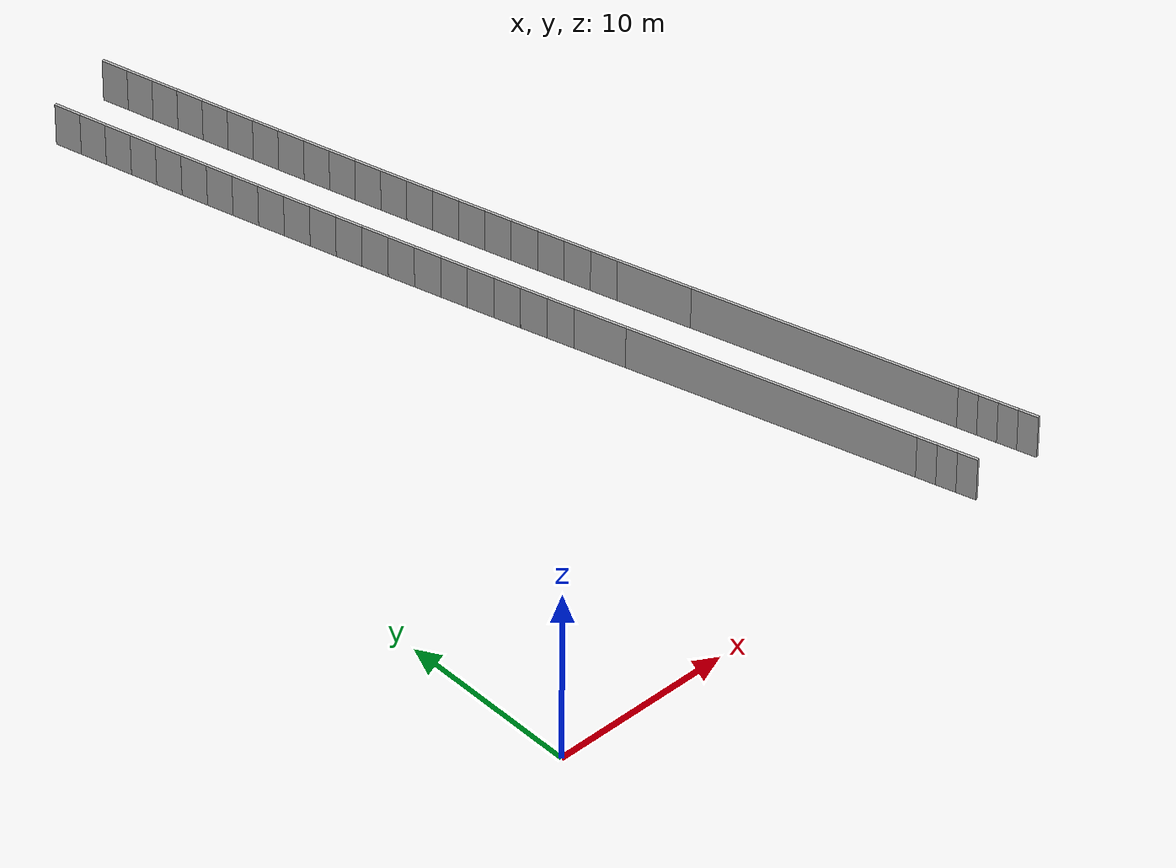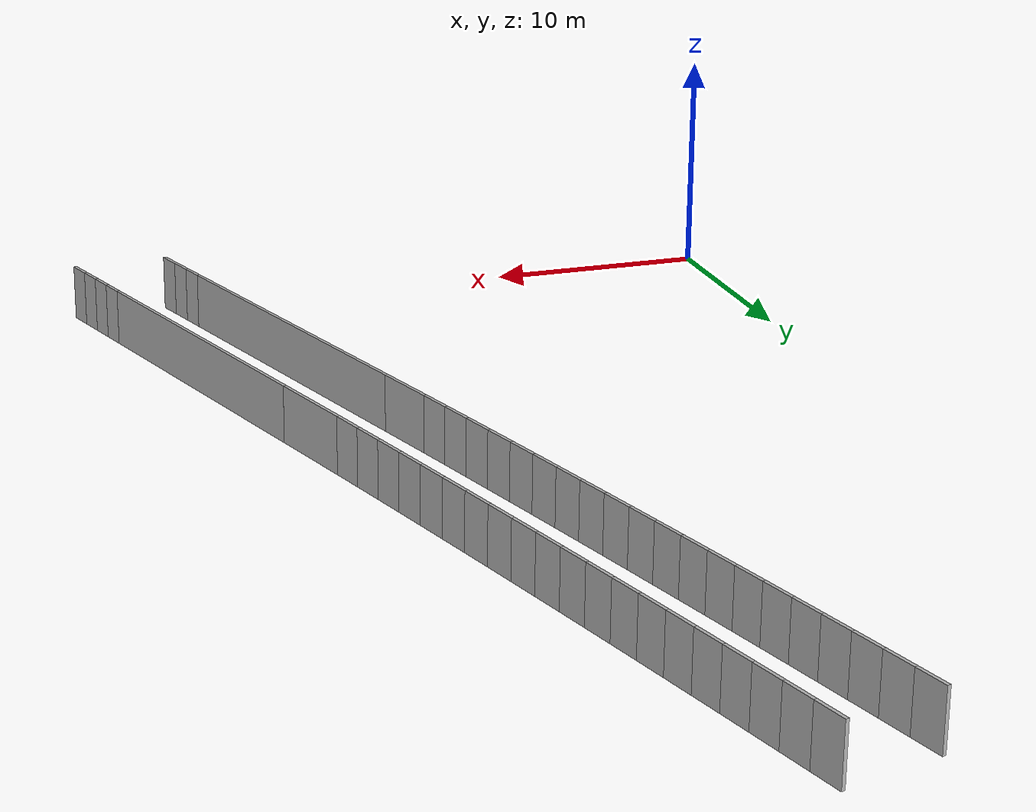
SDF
<?xml version="1.0" ?>
<sdf version="1.6">
  <model name="sps_0320">
    <pose frame="">0 0 0 0 -0 0</pose>
    <static>1</static>
    <self_collide>0</self_collide>
    <allow_auto_disable>0</allow_auto_disable>
    <link name="Wall296">
      <kinematic>0</kinematic>
      <gravity>1</gravity>
      <self_collide>0</self_collide>
      <collision name="collision">
        <geometry>
          <box>
            <size>2.85806 0.15 2.5</size>
          </box>
        </geometry>
        <pose frame="">0 0 0 0 -0 0</pose>
      </collision>
      <visual name="visual">
        <geometry>
          <box>
            <size>2.85806 0.15 2.5</size>
          </box>
        </geometry>
        <pose frame="">0 0 0 0 -0 0</pose>
        <cast_shadows>1</cast_shadows>
        <transparency>0.0</transparency>
      </visual>
      <pose frame="">20.5429 19.2606 1.25 0 0 -1.27627</pose>
    </link>
    <link name="Wall297">
      <kinematic>0</kinematic>
      <gravity>1</gravity>
      <self_collide>0</self_collide>
      <collision name="collision">
        <geometry>
          <box>
            <size>15.8238 0.15 2.5</size>
          </box>
        </geometry>
        <pose frame="">0 0 0 0 -0 0</pose>
      </collision>
      <visual name="visual">
        <geometry>
          <box>
            <size>15.8238 0.15 2.5</size>
          </box>
        </geometry>
        <pose frame="">0 0 0 0 -0 0</pose>
        <cast_shadows>1</cast_shadows>
        <transparency>0.0</transparency>
      </visual>
      <pose frame="">23.2545 10.3219 1.25 0 0 -1.27627</pose>
    </link>
    <link name="Wall366">
      <kinematic>0</kinematic>
      <gravity>1</gravity>
      <self_collide>0</self_collide>
      <collision name="collision">
        <geometry>
          <box>
            <size>14.5713 0.15 2.5</size>
          </box>
        </geometry>
        <pose frame="">0 0 0 0 -0 0</pose>
      </collision>
      <visual name="visual">
        <geometry>
          <box>
            <size>14.5713 0.15 2.5</size>
          </box>
        </geometry>
        <pose frame="">0 0 0 0 -0 0</pose>
        <cast_shadows>1</cast_shadows>
        <transparency>0.0</transparency>
      </visual>
      <pose frame="">27.3989 10.9213 1.25 0 -0 1.86538</pose>
    </link>
    <link name="Wall367">
      <kinematic>0</kinematic>
      <gravity>1</gravity>
      <self_collide>0</self_collide>
      <collision name="collision">
        <geometry>
          <box>
            <size>4.09938 0.15 2.5</size>
          </box>
        </geometry>
        <pose frame="">0 0 0 0 -0 0</pose>
      </collision>
      <visual name="visual">
        <geometry>
          <box>
            <size>4.09938 0.15 2.5</size>
          </box>
        </geometry>
        <pose frame="">0 0 0 0 -0 0</pose>
        <cast_shadows>1</cast_shadows>
        <transparency>0.0</transparency>
      </visual>
      <pose frame="">24.6884 19.8545 1.25 0 -0 1.86538</pose>
    </link>
    <link name="Wall2739">
      <kinematic>0</kinematic>
      <gravity>1</gravity>
      <self_collide>0</self_collide>
      <collision name="collision">
        <geometry>
          <box>
            <size>1.07596 0.15 2.5</size>
          </box>
        </geometry>
        <pose frame="">0 0 0 0 -0 0</pose>
      </collision>
      <visual name="visual">
        <geometry>
          <box>
            <size>1.07596 0.15 2.5</size>
          </box>
        </geometry>
        <pose frame="">0 0 0 0 -0 0</pose>
        <cast_shadows>1</cast_shadows>
        <transparency>0.0</transparency>
      </visual>
      <pose frame="">29.6702 3.43458 1.25 0 0 -1.27676</pose>
    </link>
    <link name="Wall2740">
      <kinematic>0</kinematic>
      <gravity>1</gravity>
      <self_collide>0</self_collide>
      <collision name="collision">
        <geometry>
          <box>
            <size>1.07595 0.15 2.5</size>
          </box>
        </geometry>
        <pose frame="">0 0 0 0 -0 0</pose>
      </collision>
      <visual name="visual">
        <geometry>
          <box>
            <size>1.07595 0.15 2.5</size>
          </box>
        </geometry>
        <pose frame="">0 0 0 0 -0 0</pose>
        <cast_shadows>1</cast_shadows>
        <transparency>0.0</transparency>
      </visual>
      <pose frame="">29.9826 2.40498 1.25 0 0 -1.27563</pose>
    </link>
    <link name="Wall2741">
      <kinematic>0</kinematic>
      <gravity>1</gravity>
      <self_collide>0</self_collide>
      <collision name="collision">
        <geometry>
          <box>
            <size>1.0759 0.15 2.5</size>
          </box>
        </geometry>
        <pose frame="">0 0 0 0 -0 0</pose>
      </collision>
      <visual name="visual">
        <geometry>
          <box>
            <size>1.0759 0.15 2.5</size>
          </box>
        </geometry>
        <pose frame="">0 0 0 0 -0 0</pose>
        <cast_shadows>1</cast_shadows>
        <transparency>0.0</transparency>
      </visual>
      <pose frame="">30.2962 1.37578 1.25 0 0 -1.27443</pose>
    </link>
    <link name="Wall2742">
      <kinematic>0</kinematic>
      <gravity>1</gravity>
      <self_collide>0</self_collide>
      <collision name="collision">
        <geometry>
          <box>
            <size>1.0759 0.15 2.5</size>
          </box>
        </geometry>
        <pose frame="">0 0 0 0 -0 0</pose>
      </collision>
      <visual name="visual">
        <geometry>
          <box>
            <size>1.0759 0.15 2.5</size>
          </box>
        </geometry>
        <pose frame="">0 0 0 0 -0 0</pose>
        <cast_shadows>1</cast_shadows>
        <transparency>0.0</transparency>
      </visual>
      <pose frame="">30.6111 0.346999 1.25 0 0 -1.27307</pose>
    </link>
    <link name="Wall5372">
      <kinematic>0</kinematic>
      <gravity>1</gravity>
      <self_collide>0</self_collide>
      <collision name="collision">
        <geometry>
          <box>
            <size>1.49649 0.15 2.5</size>
          </box>
        </geometry>
        <pose frame="">0 0 0 0 -0 0</pose>
      </collision>
      <visual name="visual">
        <geometry>
          <box>
            <size>1.49649 0.15 2.5</size>
          </box>
        </geometry>
        <pose frame="">0 0 0 0 -0 0</pose>
        <cast_shadows>1</cast_shadows>
        <transparency>0.0</transparency>
      </visual>
      <pose frame="">16.157 49.8972 1.25 0 0 -1.31089</pose>
    </link>
    <link name="Wall5373">
      <kinematic>0</kinematic>
      <gravity>1</gravity>
      <self_collide>0</self_collide>
      <collision name="collision">
        <geometry>
          <box>
            <size>1.49651 0.15 2.5</size>
          </box>
        </geometry>
        <pose frame="">0 0 0 0 -0 0</pose>
      </collision>
      <visual name="visual">
        <geometry>
          <box>
            <size>1.49651 0.15 2.5</size>
          </box>
        </geometry>
        <pose frame="">0 0 0 0 -0 0</pose>
        <cast_shadows>1</cast_shadows>
        <transparency>0.0</transparency>
      </visual>
      <pose frame="">16.5427 48.4513 1.25 0 0 -1.30925</pose>
    </link>
    <link name="Wall5374">
      <kinematic>0</kinematic>
      <gravity>1</gravity>
      <self_collide>0</self_collide>
      <collision name="collision">
        <geometry>
          <box>
            <size>1.4965 0.15 2.5</size>
          </box>
        </geometry>
        <pose frame="">0 0 0 0 -0 0</pose>
      </collision>
      <visual name="visual">
        <geometry>
          <box>
            <size>1.4965 0.15 2.5</size>
          </box>
        </geometry>
        <pose frame="">0 0 0 0 -0 0</pose>
        <cast_shadows>1</cast_shadows>
        <transparency>0.0</transparency>
      </visual>
      <pose frame="">16.9309 47.006 1.25 0 0 -1.30756</pose>
    </link>
    <link name="Wall5375">
      <kinematic>0</kinematic>
      <gravity>1</gravity>
      <self_collide>0</self_collide>
      <collision name="collision">
        <geometry>
          <box>
            <size>1.49678 0.15 2.5</size>
          </box>
        </geometry>
        <pose frame="">0 0 0 0 -0 0</pose>
      </collision>
      <visual name="visual">
        <geometry>
          <box>
            <size>1.49678 0.15 2.5</size>
          </box>
        </geometry>
        <pose frame="">0 0 0 0 -0 0</pose>
        <cast_shadows>1</cast_shadows>
        <transparency>0.0</transparency>
      </visual>
      <pose frame="">17.3214 45.5612 1.25 0 0 -1.30609</pose>
    </link>
    <link name="Wall5376">
      <kinematic>0</kinematic>
      <gravity>1</gravity>
      <self_collide>0</self_collide>
      <collision name="collision">
        <geometry>
          <box>
            <size>1.49635 0.15 2.5</size>
          </box>
        </geometry>
        <pose frame="">0 0 0 0 -0 0</pose>
      </collision>
      <visual name="visual">
        <geometry>
          <box>
            <size>1.49635 0.15 2.5</size>
          </box>
        </geometry>
        <pose frame="">0 0 0 0 -0 0</pose>
        <cast_shadows>1</cast_shadows>
        <transparency>0.0</transparency>
      </visual>
      <pose frame="">17.7141 44.1171 1.25 0 0 -1.30449</pose>
    </link>
    <link name="Wall5377">
      <kinematic>0</kinematic>
      <gravity>1</gravity>
      <self_collide>0</self_collide>
      <collision name="collision">
        <geometry>
          <box>
            <size>1.49658 0.15 2.5</size>
          </box>
        </geometry>
        <pose frame="">0 0 0 0 -0 0</pose>
      </collision>
      <visual name="visual">
        <geometry>
          <box>
            <size>1.49658 0.15 2.5</size>
          </box>
        </geometry>
        <pose frame="">0 0 0 0 -0 0</pose>
        <cast_shadows>1</cast_shadows>
        <transparency>0.0</transparency>
      </visual>
      <pose frame="">18.1092 42.6737 1.25 0 0 -1.30284</pose>
    </link>
    <link name="Wall5378">
      <kinematic>0</kinematic>
      <gravity>1</gravity>
      <self_collide>0</self_collide>
      <collision name="collision">
        <geometry>
          <box>
            <size>1.49667 0.15 2.5</size>
          </box>
        </geometry>
        <pose frame="">0 0 0 0 -0 0</pose>
      </collision>
      <visual name="visual">
        <geometry>
          <box>
            <size>1.49667 0.15 2.5</size>
          </box>
        </geometry>
        <pose frame="">0 0 0 0 -0 0</pose>
        <cast_shadows>1</cast_shadows>
        <transparency>0.0</transparency>
      </visual>
      <pose frame="">18.5066 41.2308 1.25 0 0 -1.30125</pose>
    </link>
    <link name="Wall5379">
      <kinematic>0</kinematic>
      <gravity>1</gravity>
      <self_collide>0</self_collide>
      <collision name="collision">
        <geometry>
          <box>
            <size>1.49645 0.15 2.5</size>
          </box>
        </geometry>
        <pose frame="">0 0 0 0 -0 0</pose>
      </collision>
      <visual name="visual">
        <geometry>
          <box>
            <size>1.49645 0.15 2.5</size>
          </box>
        </geometry>
        <pose frame="">0 0 0 0 -0 0</pose>
        <cast_shadows>1</cast_shadows>
        <transparency>0.0</transparency>
      </visual>
      <pose frame="">18.9062 39.7886 1.25 0 0 -1.29964</pose>
    </link>
    <link name="Wall5380">
      <kinematic>0</kinematic>
      <gravity>1</gravity>
      <self_collide>0</self_collide>
      <collision name="collision">
        <geometry>
          <box>
            <size>1.49646 0.15 2.5</size>
          </box>
        </geometry>
        <pose frame="">0 0 0 0 -0 0</pose>
      </collision>
      <visual name="visual">
        <geometry>
          <box>
            <size>1.49646 0.15 2.5</size>
          </box>
        </geometry>
        <pose frame="">0 0 0 0 -0 0</pose>
        <cast_shadows>1</cast_shadows>
        <transparency>0.0</transparency>
      </visual>
      <pose frame="">19.3081 38.3471 1.25 0 0 -1.29824</pose>
    </link>
    <link name="Wall5381">
      <kinematic>0</kinematic>
      <gravity>1</gravity>
      <self_collide>0</self_collide>
      <collision name="collision">
        <geometry>
          <box>
            <size>1.49657 0.15 2.5</size>
          </box>
        </geometry>
        <pose frame="">0 0 0 0 -0 0</pose>
      </collision>
      <visual name="visual">
        <geometry>
          <box>
            <size>1.49657 0.15 2.5</size>
          </box>
        </geometry>
        <pose frame="">0 0 0 0 -0 0</pose>
        <cast_shadows>1</cast_shadows>
        <transparency>0.0</transparency>
      </visual>
      <pose frame="">19.7122 36.9062 1.25 0 0 -1.29649</pose>
    </link>
    <link name="Wall5382">
      <kinematic>0</kinematic>
      <gravity>1</gravity>
      <self_collide>0</self_collide>
      <collision name="collision">
        <geometry>
          <box>
            <size>1.49651 0.15 2.5</size>
          </box>
        </geometry>
        <pose frame="">0 0 0 0 -0 0</pose>
      </collision>
      <visual name="visual">
        <geometry>
          <box>
            <size>1.49651 0.15 2.5</size>
          </box>
        </geometry>
        <pose frame="">0 0 0 0 -0 0</pose>
        <cast_shadows>1</cast_shadows>
        <transparency>0.0</transparency>
      </visual>
      <pose frame="">20.1186 35.4659 1.25 0 0 -1.29512</pose>
    </link>
    <link name="Wall5383">
      <kinematic>0</kinematic>
      <gravity>1</gravity>
      <self_collide>0</self_collide>
      <collision name="collision">
        <geometry>
          <box>
            <size>1.49666 0.15 2.5</size>
          </box>
        </geometry>
        <pose frame="">0 0 0 0 -0 0</pose>
      </collision>
      <visual name="visual">
        <geometry>
          <box>
            <size>1.49666 0.15 2.5</size>
          </box>
        </geometry>
        <pose frame="">0 0 0 0 -0 0</pose>
        <cast_shadows>1</cast_shadows>
        <transparency>0.0</transparency>
      </visual>
      <pose frame="">20.5272 34.0262 1.25 0 0 -1.29328</pose>
    </link>
    <link name="Wall5384">
      <kinematic>0</kinematic>
      <gravity>1</gravity>
      <self_collide>0</self_collide>
      <collision name="collision">
        <geometry>
          <box>
            <size>1.49666 0.15 2.5</size>
          </box>
        </geometry>
        <pose frame="">0 0 0 0 -0 0</pose>
      </collision>
      <visual name="visual">
        <geometry>
          <box>
            <size>1.49666 0.15 2.5</size>
          </box>
        </geometry>
        <pose frame="">0 0 0 0 -0 0</pose>
        <cast_shadows>1</cast_shadows>
        <transparency>0.0</transparency>
      </visual>
      <pose frame="">20.9383 32.5871 1.25 0 0 -1.2918</pose>
    </link>
    <link name="Wall5385">
      <kinematic>0</kinematic>
      <gravity>1</gravity>
      <self_collide>0</self_collide>
      <collision name="collision">
        <geometry>
          <box>
            <size>1.49652 0.15 2.5</size>
          </box>
        </geometry>
        <pose frame="">0 0 0 0 -0 0</pose>
      </collision>
      <visual name="visual">
        <geometry>
          <box>
            <size>1.49652 0.15 2.5</size>
          </box>
        </geometry>
        <pose frame="">0 0 0 0 -0 0</pose>
        <cast_shadows>1</cast_shadows>
        <transparency>0.0</transparency>
      </visual>
      <pose frame="">21.3516 31.1487 1.25 0 0 -1.2902</pose>
    </link>
    <link name="Wall5386">
      <kinematic>0</kinematic>
      <gravity>1</gravity>
      <self_collide>0</self_collide>
      <collision name="collision">
        <geometry>
          <box>
            <size>1.49642 0.15 2.5</size>
          </box>
        </geometry>
        <pose frame="">0 0 0 0 -0 0</pose>
      </collision>
      <visual name="visual">
        <geometry>
          <box>
            <size>1.49642 0.15 2.5</size>
          </box>
        </geometry>
        <pose frame="">0 0 0 0 -0 0</pose>
        <cast_shadows>1</cast_shadows>
        <transparency>0.0</transparency>
      </visual>
      <pose frame="">21.7673 29.7111 1.25 0 0 -1.28852</pose>
    </link>
    <link name="Wall5387">
      <kinematic>0</kinematic>
      <gravity>1</gravity>
      <self_collide>0</self_collide>
      <collision name="collision">
        <geometry>
          <box>
            <size>1.49661 0.15 2.5</size>
          </box>
        </geometry>
        <pose frame="">0 0 0 0 -0 0</pose>
      </collision>
      <visual name="visual">
        <geometry>
          <box>
            <size>1.49661 0.15 2.5</size>
          </box>
        </geometry>
        <pose frame="">0 0 0 0 -0 0</pose>
        <cast_shadows>1</cast_shadows>
        <transparency>0.0</transparency>
      </visual>
      <pose frame="">22.1851 28.2741 1.25 0 0 -1.2872</pose>
    </link>
    <link name="Wall5388">
      <kinematic>0</kinematic>
      <gravity>1</gravity>
      <self_collide>0</self_collide>
      <collision name="collision">
        <geometry>
          <box>
            <size>1.4963 0.15 2.5</size>
          </box>
        </geometry>
        <pose frame="">0 0 0 0 -0 0</pose>
      </collision>
      <visual name="visual">
        <geometry>
          <box>
            <size>1.4963 0.15 2.5</size>
          </box>
        </geometry>
        <pose frame="">0 0 0 0 -0 0</pose>
        <cast_shadows>1</cast_shadows>
        <transparency>0.0</transparency>
      </visual>
      <pose frame="">22.605 26.8378 1.25 0 0 -1.28544</pose>
    </link>
    <link name="Wall5389">
      <kinematic>0</kinematic>
      <gravity>1</gravity>
      <self_collide>0</self_collide>
      <collision name="collision">
        <geometry>
          <box>
            <size>1.49664 0.15 2.5</size>
          </box>
        </geometry>
        <pose frame="">0 0 0 0 -0 0</pose>
      </collision>
      <visual name="visual">
        <geometry>
          <box>
            <size>1.49664 0.15 2.5</size>
          </box>
        </geometry>
        <pose frame="">0 0 0 0 -0 0</pose>
        <cast_shadows>1</cast_shadows>
        <transparency>0.0</transparency>
      </visual>
      <pose frame="">23.0275 25.4022 1.25 0 0 -1.28381</pose>
    </link>
    <link name="Wall5390">
      <kinematic>0</kinematic>
      <gravity>1</gravity>
      <self_collide>0</self_collide>
      <collision name="collision">
        <geometry>
          <box>
            <size>1.49648 0.15 2.5</size>
          </box>
        </geometry>
        <pose frame="">0 0 0 0 -0 0</pose>
      </collision>
      <visual name="visual">
        <geometry>
          <box>
            <size>1.49648 0.15 2.5</size>
          </box>
        </geometry>
        <pose frame="">0 0 0 0 -0 0</pose>
        <cast_shadows>1</cast_shadows>
        <transparency>0.0</transparency>
      </visual>
      <pose frame="">23.4523 23.9672 1.25 0 0 -1.28216</pose>
    </link>
    <link name="Wall5391">
      <kinematic>0</kinematic>
      <gravity>1</gravity>
      <self_collide>0</self_collide>
      <collision name="collision">
        <geometry>
          <box>
            <size>1.49654 0.15 2.5</size>
          </box>
        </geometry>
        <pose frame="">0 0 0 0 -0 0</pose>
      </collision>
      <visual name="visual">
        <geometry>
          <box>
            <size>1.49654 0.15 2.5</size>
          </box>
        </geometry>
        <pose frame="">0 0 0 0 -0 0</pose>
        <cast_shadows>1</cast_shadows>
        <transparency>0.0</transparency>
      </visual>
      <pose frame="">23.8793 22.5329 1.25 0 0 -1.28073</pose>
    </link>
    <link name="Wall7168">
      <kinematic>0</kinematic>
      <gravity>1</gravity>
      <self_collide>0</self_collide>
      <collision name="collision">
        <geometry>
          <box>
            <size>1.50315 0.15 2.5</size>
          </box>
        </geometry>
        <pose frame="">0 0 0 0 -0 0</pose>
      </collision>
      <visual name="visual">
        <geometry>
          <box>
            <size>1.50315 0.15 2.5</size>
          </box>
        </geometry>
        <pose frame="">0 0 0 0 -0 0</pose>
        <cast_shadows>1</cast_shadows>
        <transparency>0.0</transparency>
      </visual>
      <pose frame="">12.1569 48.8326 1.25 0 0 -1.31081</pose>
    </link>
    <link name="Wall7169">
      <kinematic>0</kinematic>
      <gravity>1</gravity>
      <self_collide>0</self_collide>
      <collision name="collision">
        <geometry>
          <box>
            <size>1.50307 0.15 2.5</size>
          </box>
        </geometry>
        <pose frame="">0 0 0 0 -0 0</pose>
      </collision>
      <visual name="visual">
        <geometry>
          <box>
            <size>1.50307 0.15 2.5</size>
          </box>
        </geometry>
        <pose frame="">0 0 0 0 -0 0</pose>
        <cast_shadows>1</cast_shadows>
        <transparency>0.0</transparency>
      </visual>
      <pose frame="">12.5444 47.3803 1.25 0 0 -1.30928</pose>
    </link>
    <link name="Wall7170">
      <kinematic>0</kinematic>
      <gravity>1</gravity>
      <self_collide>0</self_collide>
      <collision name="collision">
        <geometry>
          <box>
            <size>1.50316 0.15 2.5</size>
          </box>
        </geometry>
        <pose frame="">0 0 0 0 -0 0</pose>
      </collision>
      <visual name="visual">
        <geometry>
          <box>
            <size>1.50316 0.15 2.5</size>
          </box>
        </geometry>
        <pose frame="">0 0 0 0 -0 0</pose>
        <cast_shadows>1</cast_shadows>
        <transparency>0.0</transparency>
      </visual>
      <pose frame="">12.9342 45.9286 1.25 0 0 -1.30766</pose>
    </link>
    <link name="Wall7171">
      <kinematic>0</kinematic>
      <gravity>1</gravity>
      <self_collide>0</self_collide>
      <collision name="collision">
        <geometry>
          <box>
            <size>1.50301 0.15 2.5</size>
          </box>
        </geometry>
        <pose frame="">0 0 0 0 -0 0</pose>
      </collision>
      <visual name="visual">
        <geometry>
          <box>
            <size>1.50301 0.15 2.5</size>
          </box>
        </geometry>
        <pose frame="">0 0 0 0 -0 0</pose>
        <cast_shadows>1</cast_shadows>
        <transparency>0.0</transparency>
      </visual>
      <pose frame="">13.3263 44.4776 1.25 0 0 -1.30599</pose>
    </link>
    <link name="Wall7172">
      <kinematic>0</kinematic>
      <gravity>1</gravity>
      <self_collide>0</self_collide>
      <collision name="collision">
        <geometry>
          <box>
            <size>1.50319 0.15 2.5</size>
          </box>
        </geometry>
        <pose frame="">0 0 0 0 -0 0</pose>
      </collision>
      <visual name="visual">
        <geometry>
          <box>
            <size>1.50319 0.15 2.5</size>
          </box>
        </geometry>
        <pose frame="">0 0 0 0 -0 0</pose>
        <cast_shadows>1</cast_shadows>
        <transparency>0.0</transparency>
      </visual>
      <pose frame="">13.7208 43.0272 1.25 0 0 -1.30447</pose>
    </link>
    <link name="Wall7173">
      <kinematic>0</kinematic>
      <gravity>1</gravity>
      <self_collide>0</self_collide>
      <collision name="collision">
        <geometry>
          <box>
            <size>1.50306 0.15 2.5</size>
          </box>
        </geometry>
        <pose frame="">0 0 0 0 -0 0</pose>
      </collision>
      <visual name="visual">
        <geometry>
          <box>
            <size>1.50306 0.15 2.5</size>
          </box>
        </geometry>
        <pose frame="">0 0 0 0 -0 0</pose>
        <cast_shadows>1</cast_shadows>
        <transparency>0.0</transparency>
      </visual>
      <pose frame="">14.1177 41.5774 1.25 0 0 -1.3028</pose>
    </link>
    <link name="Wall7174">
      <kinematic>0</kinematic>
      <gravity>1</gravity>
      <self_collide>0</self_collide>
      <collision name="collision">
        <geometry>
          <box>
            <size>1.50305 0.15 2.5</size>
          </box>
        </geometry>
        <pose frame="">0 0 0 0 -0 0</pose>
      </collision>
      <visual name="visual">
        <geometry>
          <box>
            <size>1.50305 0.15 2.5</size>
          </box>
        </geometry>
        <pose frame="">0 0 0 0 -0 0</pose>
        <cast_shadows>1</cast_shadows>
        <transparency>0.0</transparency>
      </visual>
      <pose frame="">14.5168 40.1283 1.25 0 0 -1.30128</pose>
    </link>
    <link name="Wall7175">
      <kinematic>0</kinematic>
      <gravity>1</gravity>
      <self_collide>0</self_collide>
      <collision name="collision">
        <geometry>
          <box>
            <size>1.50305 0.15 2.5</size>
          </box>
        </geometry>
        <pose frame="">0 0 0 0 -0 0</pose>
      </collision>
      <visual name="visual">
        <geometry>
          <box>
            <size>1.50305 0.15 2.5</size>
          </box>
        </geometry>
        <pose frame="">0 0 0 0 -0 0</pose>
        <cast_shadows>1</cast_shadows>
        <transparency>0.0</transparency>
      </visual>
      <pose frame="">14.9181 38.6798 1.25 0 0 -1.29976</pose>
    </link>
    <link name="Wall7176">
      <kinematic>0</kinematic>
      <gravity>1</gravity>
      <self_collide>0</self_collide>
      <collision name="collision">
        <geometry>
          <box>
            <size>1.50316 0.15 2.5</size>
          </box>
        </geometry>
        <pose frame="">0 0 0 0 -0 0</pose>
      </collision>
      <visual name="visual">
        <geometry>
          <box>
            <size>1.50316 0.15 2.5</size>
          </box>
        </geometry>
        <pose frame="">0 0 0 0 -0 0</pose>
        <cast_shadows>1</cast_shadows>
        <transparency>0.0</transparency>
      </visual>
      <pose frame="">15.3217 37.2319 1.25 0 0 -1.29814</pose>
    </link>
    <link name="Wall7177">
      <kinematic>0</kinematic>
      <gravity>1</gravity>
      <self_collide>0</self_collide>
      <collision name="collision">
        <geometry>
          <box>
            <size>1.50298 0.15 2.5</size>
          </box>
        </geometry>
        <pose frame="">0 0 0 0 -0 0</pose>
      </collision>
      <visual name="visual">
        <geometry>
          <box>
            <size>1.50298 0.15 2.5</size>
          </box>
        </geometry>
        <pose frame="">0 0 0 0 -0 0</pose>
        <cast_shadows>1</cast_shadows>
        <transparency>0.0</transparency>
      </visual>
      <pose frame="">15.7277 35.7847 1.25 0 0 -1.29646</pose>
    </link>
    <link name="Wall7178">
      <kinematic>0</kinematic>
      <gravity>1</gravity>
      <self_collide>0</self_collide>
      <collision name="collision">
        <geometry>
          <box>
            <size>1.50324 0.15 2.5</size>
          </box>
        </geometry>
        <pose frame="">0 0 0 0 -0 0</pose>
      </collision>
      <visual name="visual">
        <geometry>
          <box>
            <size>1.50324 0.15 2.5</size>
          </box>
        </geometry>
        <pose frame="">0 0 0 0 -0 0</pose>
        <cast_shadows>1</cast_shadows>
        <transparency>0.0</transparency>
      </visual>
      <pose frame="">16.1359 34.3381 1.25 0 0 -1.29495</pose>
    </link>
    <link name="Wall7179">
      <kinematic>0</kinematic>
      <gravity>1</gravity>
      <self_collide>0</self_collide>
      <collision name="collision">
        <geometry>
          <box>
            <size>1.50308 0.15 2.5</size>
          </box>
        </geometry>
        <pose frame="">0 0 0 0 -0 0</pose>
      </collision>
      <visual name="visual">
        <geometry>
          <box>
            <size>1.50308 0.15 2.5</size>
          </box>
        </geometry>
        <pose frame="">0 0 0 0 -0 0</pose>
        <cast_shadows>1</cast_shadows>
        <transparency>0.0</transparency>
      </visual>
      <pose frame="">16.5465 32.8921 1.25 0 0 -1.2934</pose>
    </link>
    <link name="Wall7180">
      <kinematic>0</kinematic>
      <gravity>1</gravity>
      <self_collide>0</self_collide>
      <collision name="collision">
        <geometry>
          <box>
            <size>1.50291 0.15 2.5</size>
          </box>
        </geometry>
        <pose frame="">0 0 0 0 -0 0</pose>
      </collision>
      <visual name="visual">
        <geometry>
          <box>
            <size>1.50291 0.15 2.5</size>
          </box>
        </geometry>
        <pose frame="">0 0 0 0 -0 0</pose>
        <cast_shadows>1</cast_shadows>
        <transparency>0.0</transparency>
      </visual>
      <pose frame="">16.9593 31.4469 1.25 0 0 -1.29172</pose>
    </link>
    <link name="Wall7181">
      <kinematic>0</kinematic>
      <gravity>1</gravity>
      <self_collide>0</self_collide>
      <collision name="collision">
        <geometry>
          <box>
            <size>1.50316 0.15 2.5</size>
          </box>
        </geometry>
        <pose frame="">0 0 0 0 -0 0</pose>
      </collision>
      <visual name="visual">
        <geometry>
          <box>
            <size>1.50316 0.15 2.5</size>
          </box>
        </geometry>
        <pose frame="">0 0 0 0 -0 0</pose>
        <cast_shadows>1</cast_shadows>
        <transparency>0.0</transparency>
      </visual>
      <pose frame="">17.3744 30.0023 1.25 0 0 -1.29025</pose>
    </link>
    <link name="Wall7182">
      <kinematic>0</kinematic>
      <gravity>1</gravity>
      <self_collide>0</self_collide>
      <collision name="collision">
        <geometry>
          <box>
            <size>1.50301 0.15 2.5</size>
          </box>
        </geometry>
        <pose frame="">0 0 0 0 -0 0</pose>
      </collision>
      <visual name="visual">
        <geometry>
          <box>
            <size>1.50301 0.15 2.5</size>
          </box>
        </geometry>
        <pose frame="">0 0 0 0 -0 0</pose>
        <cast_shadows>1</cast_shadows>
        <transparency>0.0</transparency>
      </visual>
      <pose frame="">17.7917 28.5583 1.25 0 0 -1.2887</pose>
    </link>
    <link name="Wall7183">
      <kinematic>0</kinematic>
      <gravity>1</gravity>
      <self_collide>0</self_collide>
      <collision name="collision">
        <geometry>
          <box>
            <size>1.50309 0.15 2.5</size>
          </box>
        </geometry>
        <pose frame="">0 0 0 0 -0 0</pose>
      </collision>
      <visual name="visual">
        <geometry>
          <box>
            <size>1.50309 0.15 2.5</size>
          </box>
        </geometry>
        <pose frame="">0 0 0 0 -0 0</pose>
        <cast_shadows>1</cast_shadows>
        <transparency>0.0</transparency>
      </visual>
      <pose frame="">18.2113 27.115 1.25 0 0 -1.28706</pose>
    </link>
    <link name="Wall7184">
      <kinematic>0</kinematic>
      <gravity>1</gravity>
      <self_collide>0</self_collide>
      <collision name="collision">
        <geometry>
          <box>
            <size>1.50325 0.15 2.5</size>
          </box>
        </geometry>
        <pose frame="">0 0 0 0 -0 0</pose>
      </collision>
      <visual name="visual">
        <geometry>
          <box>
            <size>1.50325 0.15 2.5</size>
          </box>
        </geometry>
        <pose frame="">0 0 0 0 -0 0</pose>
        <cast_shadows>1</cast_shadows>
        <transparency>0.0</transparency>
      </visual>
      <pose frame="">18.6333 25.6723 1.25 0 0 -1.2854</pose>
    </link>
    <link name="Wall7185">
      <kinematic>0</kinematic>
      <gravity>1</gravity>
      <self_collide>0</self_collide>
      <collision name="collision">
        <geometry>
          <box>
            <size>1.50282 0.15 2.5</size>
          </box>
        </geometry>
        <pose frame="">0 0 0 0 -0 0</pose>
      </collision>
      <visual name="visual">
        <geometry>
          <box>
            <size>1.50282 0.15 2.5</size>
          </box>
        </geometry>
        <pose frame="">0 0 0 0 -0 0</pose>
        <cast_shadows>1</cast_shadows>
        <transparency>0.0</transparency>
      </visual>
      <pose frame="">19.0576 24.2304 1.25 0 0 -1.28379</pose>
    </link>
    <link name="Wall7186">
      <kinematic>0</kinematic>
      <gravity>1</gravity>
      <self_collide>0</self_collide>
      <collision name="collision">
        <geometry>
          <box>
            <size>1.50313 0.15 2.5</size>
          </box>
        </geometry>
        <pose frame="">0 0 0 0 -0 0</pose>
      </collision>
      <visual name="visual">
        <geometry>
          <box>
            <size>1.50313 0.15 2.5</size>
          </box>
        </geometry>
        <pose frame="">0 0 0 0 -0 0</pose>
        <cast_shadows>1</cast_shadows>
        <transparency>0.0</transparency>
      </visual>
      <pose frame="">19.4841 22.7892 1.25 0 0 -1.28237</pose>
    </link>
    <link name="Wall7187">
      <kinematic>0</kinematic>
      <gravity>1</gravity>
      <self_collide>0</self_collide>
      <collision name="collision">
        <geometry>
          <box>
            <size>1.50349 0.15 2.5</size>
          </box>
        </geometry>
        <pose frame="">0 0 0 0 -0 0</pose>
      </collision>
      <visual name="visual">
        <geometry>
          <box>
            <size>1.50349 0.15 2.5</size>
          </box>
        </geometry>
        <pose frame="">0 0 0 0 -0 0</pose>
        <cast_shadows>1</cast_shadows>
        <transparency>0.0</transparency>
      </visual>
      <pose frame="">19.913 21.3484 1.25 0 0 -1.28058</pose>
    </link>
    <link name="Wall8875">
      <kinematic>0</kinematic>
      <gravity>1</gravity>
      <self_collide>0</self_collide>
      <collision name="collision">
        <geometry>
          <box>
            <size>1.08063 0.15 2.5</size>
          </box>
        </geometry>
        <pose frame="">0 0 0 0 -0 0</pose>
      </collision>
      <visual name="visual">
        <geometry>
          <box>
            <size>1.08063 0.15 2.5</size>
          </box>
        </geometry>
        <pose frame="">0 0 0 0 -0 0</pose>
        <cast_shadows>1</cast_shadows>
        <transparency>0.0</transparency>
      </visual>
      <pose frame="">25.7079 2.2336 1.25 0 0 -1.27654</pose>
    </link>
    <link name="Wall8876">
      <kinematic>0</kinematic>
      <gravity>1</gravity>
      <self_collide>0</self_collide>
      <collision name="collision">
        <geometry>
          <box>
            <size>1.08056 0.15 2.5</size>
          </box>
        </geometry>
        <pose frame="">0 0 0 0 -0 0</pose>
      </collision>
      <visual name="visual">
        <geometry>
          <box>
            <size>1.08056 0.15 2.5</size>
          </box>
        </geometry>
        <pose frame="">0 0 0 0 -0 0</pose>
        <cast_shadows>1</cast_shadows>
        <transparency>0.0</transparency>
      </visual>
      <pose frame="">26.0218 1.1996 1.25 0 0 -1.27557</pose>
    </link>
    <link name="Wall8877">
      <kinematic>0</kinematic>
      <gravity>1</gravity>
      <self_collide>0</self_collide>
      <collision name="collision">
        <geometry>
          <box>
            <size>1.08056 0.15 2.5</size>
          </box>
        </geometry>
        <pose frame="">0 0 0 0 -0 0</pose>
      </collision>
      <visual name="visual">
        <geometry>
          <box>
            <size>1.08056 0.15 2.5</size>
          </box>
        </geometry>
        <pose frame="">0 0 0 0 -0 0</pose>
        <cast_shadows>1</cast_shadows>
        <transparency>0.0</transparency>
      </visual>
      <pose frame="">26.3369 0.165999 1.25 0 0 -1.27422</pose>
    </link>
  </model>
</sdf>
